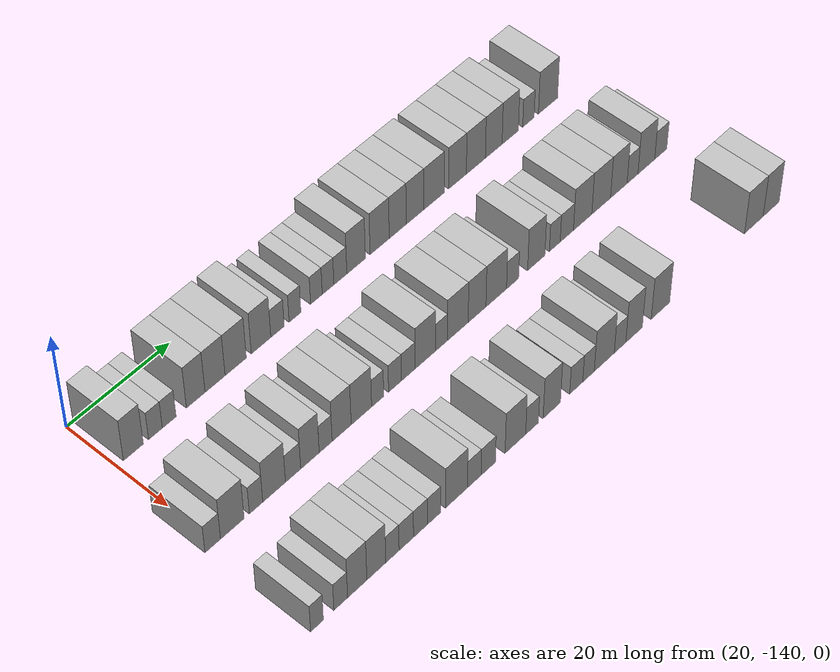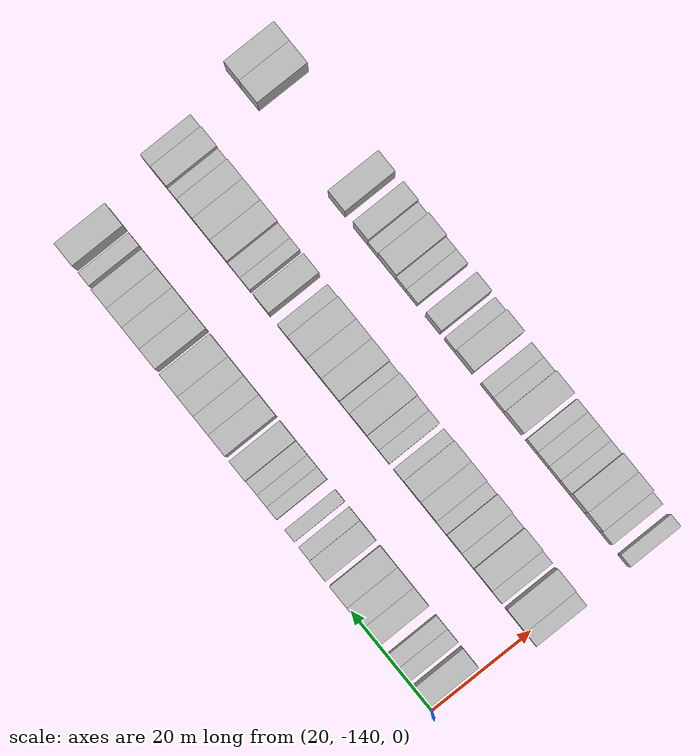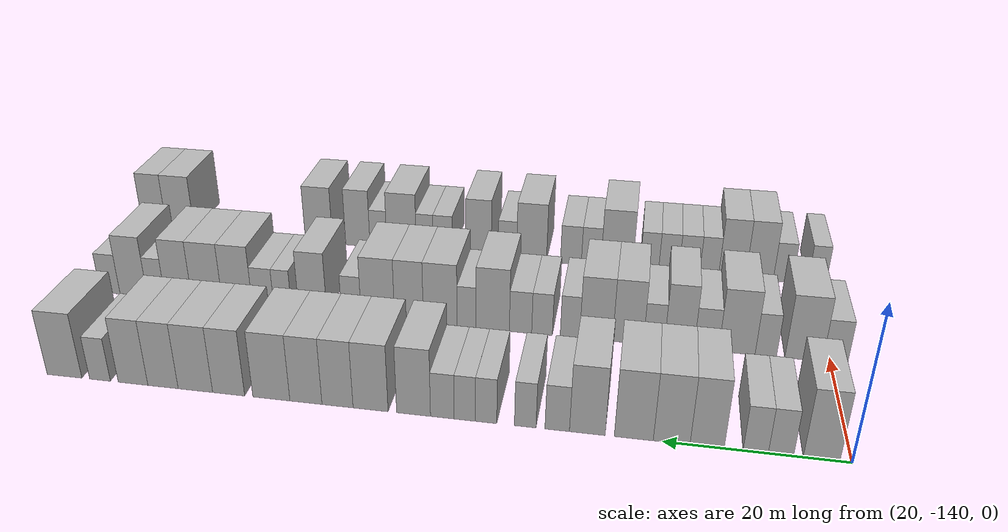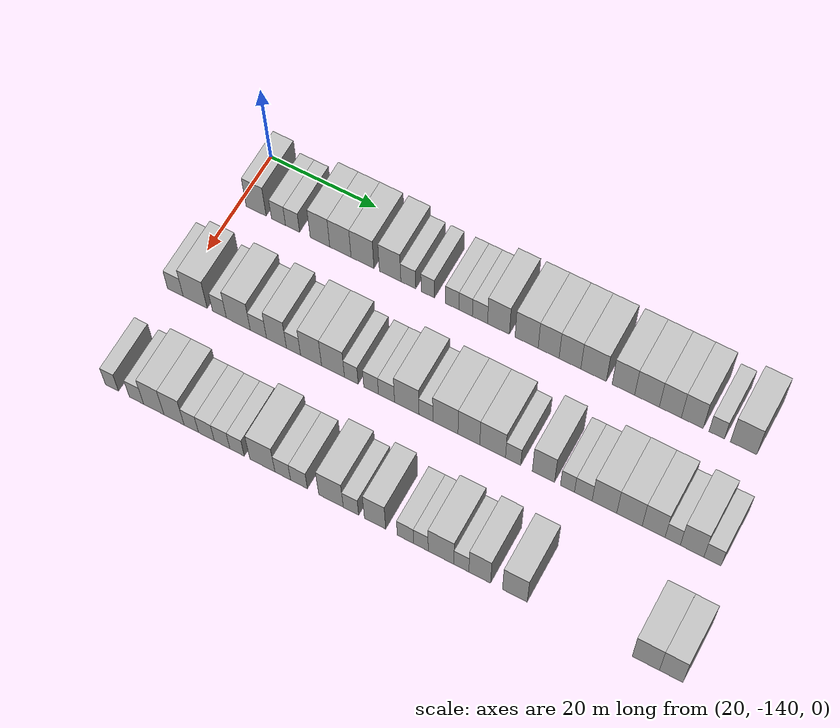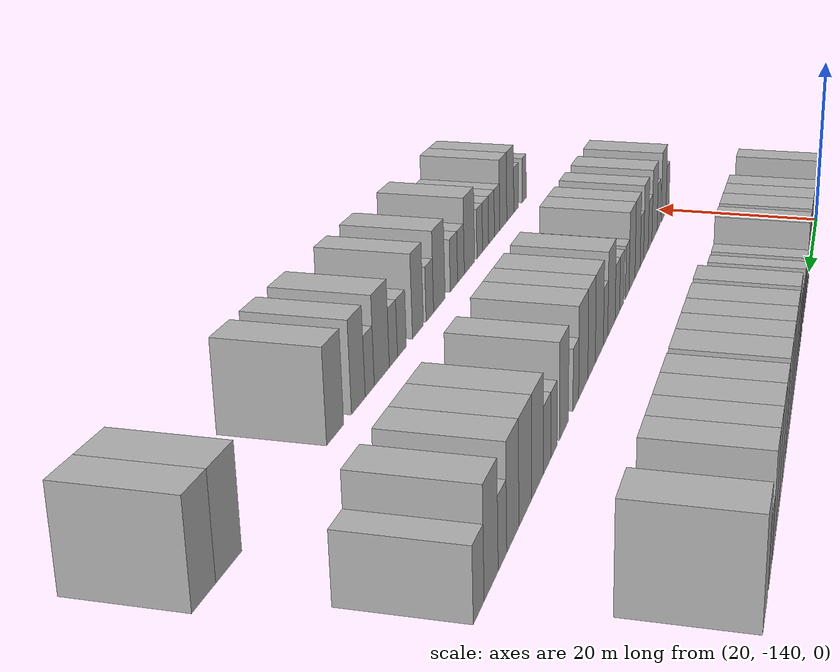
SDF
<sdf version="1.6">
 <world name="default">
  <model name="building_25">
   <static>1</static>
   <pose>25.0000 -136.8205 0 0.000000 0.000000 0.000000</pose>
   <link name="link">
    <pose>0 0 4.50 0 0 0</pose>
    <collision name="collision"><geometry><box><size>10.0000 3.8022 9.0000</size></box></geometry></collision>
    <visual name="visual">
     <cast_shadows>0</cast_shadows>
     <geometry><box><size>10.0000 3.8022 9.0000</size></box></geometry>
     <material>
      <script>
       <uri>model://HANNAS_wall/materials/scripts</uri>
       <uri>model://HANNAS_wall/materials/textures</uri>
       <name>vrc/HANNAS_wall</name>
      </script>
     </material>
    </visual>
   </link>
  </model>
  <model name="building_26">
   <static>1</static>
   <pose>25.0000 -132.5947 0 0.000000 0.000000 0.000000</pose>
   <link name="link">
    <pose>0 0 3.00 0 0 0</pose>
    <collision name="collision"><geometry><box><size>10.0000 2.6496 6.0000</size></box></geometry></collision>
    <visual name="visual">
     <cast_shadows>0</cast_shadows>
     <geometry><box><size>10.0000 2.6496 6.0000</size></box></geometry>
     <material>
      <script>
       <uri>model://HANNAS_wall/materials/scripts</uri>
       <uri>model://HANNAS_wall/materials/textures</uri>
       <name>vrc/HANNAS_wall</name>
      </script>
     </material>
    </visual>
   </link>
  </model>
  <model name="building_27">
   <static>1</static>
   <pose>25.0000 -129.9391 0 0.000000 0.000000 0.000000</pose>
   <link name="link">
    <pose>0 0 3.00 0 0 0</pose>
    <collision name="collision"><geometry><box><size>10.0000 2.6615 6.0000</size></box></geometry></collision>
    <visual name="visual">
     <cast_shadows>0</cast_shadows>
     <geometry><box><size>10.0000 2.6615 6.0000</size></box></geometry>
     <material>
      <script>
       <uri>model://HANNAS_wall/materials/scripts</uri>
       <uri>model://HANNAS_wall/materials/textures</uri>
       <name>vrc/HANNAS_wall</name>
      </script>
     </material>
    </visual>
   </link>
  </model>
  <model name="building_28">
   <static>1</static>
   <pose>25.0000 -124.7796 0 0.000000 0.000000 0.000000</pose>
   <link name="link">
    <pose>0 0 4.50 0 0 0</pose>
    <collision name="collision"><geometry><box><size>10.0000 3.6576 9.0000</size></box></geometry></collision>
    <visual name="visual">
     <cast_shadows>0</cast_shadows>
     <geometry><box><size>10.0000 3.6576 9.0000</size></box></geometry>
     <material>
      <script>
       <uri>model://HANNAS_wall/materials/scripts</uri>
       <uri>model://HANNAS_wall/materials/textures</uri>
       <name>vrc/HANNAS_wall</name>
      </script>
     </material>
    </visual>
   </link>
  </model>
  <model name="building_29">
   <static>1</static>
   <pose>25.0000 -120.9678 0 0.000000 0.000000 0.000000</pose>
   <link name="link">
    <pose>0 0 4.50 0 0 0</pose>
    <collision name="collision"><geometry><box><size>10.0000 3.9659 9.0000</size></box></geometry></collision>
    <visual name="visual">
     <cast_shadows>0</cast_shadows>
     <geometry><box><size>10.0000 3.9659 9.0000</size></box></geometry>
     <material>
      <script>
       <uri>model://HANNAS_wall/materials/scripts</uri>
       <uri>model://HANNAS_wall/materials/textures</uri>
       <name>vrc/HANNAS_wall</name>
      </script>
     </material>
    </visual>
   </link>
  </model>
  <model name="building_30">
   <static>1</static>
   <pose>25.0000 -116.8601 0 0.000000 0.000000 0.000000</pose>
   <link name="link">
    <pose>0 0 4.50 0 0 0</pose>
    <collision name="collision"><geometry><box><size>10.0000 4.2496 9.0000</size></box></geometry></collision>
    <visual name="visual">
     <cast_shadows>0</cast_shadows>
     <geometry><box><size>10.0000 4.2496 9.0000</size></box></geometry>
     <material>
      <script>
       <uri>model://HANNAS_wall/materials/scripts</uri>
       <uri>model://HANNAS_wall/materials/textures</uri>
       <name>vrc/HANNAS_wall</name>
      </script>
     </material>
    </visual>
   </link>
  </model>
  <model name="building_31">
   <static>1</static>
   <pose>25.0000 -111.7595 0 0.000000 0.000000 0.000000</pose>
   <link name="link">
    <pose>0 0 4.50 0 0 0</pose>
    <collision name="collision"><geometry><box><size>10.0000 3.9515 9.0000</size></box></geometry></collision>
    <visual name="visual">
     <cast_shadows>0</cast_shadows>
     <geometry><box><size>10.0000 3.9515 9.0000</size></box></geometry>
     <material>
      <script>
       <uri>model://HANNAS_wall/materials/scripts</uri>
       <uri>model://HANNAS_wall/materials/textures</uri>
       <name>vrc/HANNAS_wall</name>
      </script>
     </material>
    </visual>
   </link>
  </model>
  <model name="building_32">
   <static>1</static>
   <pose>25.0000 -108.4175 0 0.000000 0.000000 0.000000</pose>
   <link name="link">
    <pose>0 0 3.00 0 0 0</pose>
    <collision name="collision"><geometry><box><size>10.0000 2.7323 6.0000</size></box></geometry></collision>
    <visual name="visual">
     <cast_shadows>0</cast_shadows>
     <geometry><box><size>10.0000 2.7323 6.0000</size></box></geometry>
     <material>
      <script>
       <uri>model://HANNAS_wall/materials/scripts</uri>
       <uri>model://HANNAS_wall/materials/textures</uri>
       <name>vrc/HANNAS_wall</name>
      </script>
     </material>
    </visual>
   </link>
  </model>
  <model name="building_33">
   <static>1</static>
   <pose>25.0000 -104.8360 0 0.000000 0.000000 0.000000</pose>
   <link name="link">
    <pose>0 0 3.00 0 0 0</pose>
    <collision name="collision"><geometry><box><size>10.0000 2.4307 6.0000</size></box></geometry></collision>
    <visual name="visual">
     <cast_shadows>0</cast_shadows>
     <geometry><box><size>10.0000 2.4307 6.0000</size></box></geometry>
     <material>
      <script>
       <uri>model://HANNAS_wall/materials/scripts</uri>
       <uri>model://HANNAS_wall/materials/textures</uri>
       <name>vrc/HANNAS_wall</name>
      </script>
     </material>
    </visual>
   </link>
  </model>
  <model name="building_34">
   <static>1</static>
   <pose>25.0000 -100.4031 0 0.000000 0.000000 0.000000</pose>
   <link name="link">
    <pose>0 0 3.00 0 0 0</pose>
    <collision name="collision"><geometry><box><size>10.0000 2.4352 6.0000</size></box></geometry></collision>
    <visual name="visual">
     <cast_shadows>0</cast_shadows>
     <geometry><box><size>10.0000 2.4352 6.0000</size></box></geometry>
     <material>
      <script>
       <uri>model://HANNAS_wall/materials/scripts</uri>
       <uri>model://HANNAS_wall/materials/textures</uri>
       <name>vrc/HANNAS_wall</name>
      </script>
     </material>
    </visual>
   </link>
  </model>
  <model name="building_35">
   <static>1</static>
   <pose>25.0000 -97.9705 0 0.000000 0.000000 0.000000</pose>
   <link name="link">
    <pose>0 0 3.00 0 0 0</pose>
    <collision name="collision"><geometry><box><size>10.0000 2.4299 6.0000</size></box></geometry></collision>
    <visual name="visual">
     <cast_shadows>0</cast_shadows>
     <geometry><box><size>10.0000 2.4299 6.0000</size></box></geometry>
     <material>
      <script>
       <uri>model://HANNAS_wall/materials/scripts</uri>
       <uri>model://HANNAS_wall/materials/textures</uri>
       <name>vrc/HANNAS_wall</name>
      </script>
     </material>
    </visual>
   </link>
  </model>
  <model name="building_36">
   <static>1</static>
   <pose>25.0000 -95.3908 0 0.000000 0.000000 0.000000</pose>
   <link name="link">
    <pose>0 0 3.00 0 0 0</pose>
    <collision name="collision"><geometry><box><size>10.0000 2.7296 6.0000</size></box></geometry></collision>
    <visual name="visual">
     <cast_shadows>0</cast_shadows>
     <geometry><box><size>10.0000 2.7296 6.0000</size></box></geometry>
     <material>
      <script>
       <uri>model://HANNAS_wall/materials/scripts</uri>
       <uri>model://HANNAS_wall/materials/textures</uri>
       <name>vrc/HANNAS_wall</name>
      </script>
     </material>
    </visual>
   </link>
  </model>
  <model name="building_37">
   <static>1</static>
   <pose>25.0000 -92.0569 0 0.000000 0.000000 0.000000</pose>
   <link name="link">
    <pose>0 0 4.50 0 0 0</pose>
    <collision name="collision"><geometry><box><size>10.0000 3.9380 9.0000</size></box></geometry></collision>
    <visual name="visual">
     <cast_shadows>0</cast_shadows>
     <geometry><box><size>10.0000 3.9380 9.0000</size></box></geometry>
     <material>
      <script>
       <uri>model://HANNAS_wall/materials/scripts</uri>
       <uri>model://HANNAS_wall/materials/textures</uri>
       <name>vrc/HANNAS_wall</name>
      </script>
     </material>
    </visual>
   </link>
  </model>
  <model name="building_38">
   <static>1</static>
   <pose>25.0000 -87.0255 0 0.000000 0.000000 0.000000</pose>
   <link name="link">
    <pose>0 0 4.50 0 0 0</pose>
    <collision name="collision"><geometry><box><size>10.0000 4.1249 9.0000</size></box></geometry></collision>
    <visual name="visual">
     <cast_shadows>0</cast_shadows>
     <geometry><box><size>10.0000 4.1249 9.0000</size></box></geometry>
     <material>
      <script>
       <uri>model://HANNAS_wall/materials/scripts</uri>
       <uri>model://HANNAS_wall/materials/textures</uri>
       <name>vrc/HANNAS_wall</name>
      </script>
     </material>
    </visual>
   </link>
  </model>
  <model name="building_39">
   <static>1</static>
   <pose>25.0000 -83.1135 0 0.000000 0.000000 0.000000</pose>
   <link name="link">
    <pose>0 0 4.50 0 0 0</pose>
    <collision name="collision"><geometry><box><size>10.0000 3.6992 9.0000</size></box></geometry></collision>
    <visual name="visual">
     <cast_shadows>0</cast_shadows>
     <geometry><box><size>10.0000 3.6992 9.0000</size></box></geometry>
     <material>
      <script>
       <uri>model://HANNAS_wall/materials/scripts</uri>
       <uri>model://HANNAS_wall/materials/textures</uri>
       <name>vrc/HANNAS_wall</name>
      </script>
     </material>
    </visual>
   </link>
  </model>
  <model name="building_40">
   <static>1</static>
   <pose>25.0000 -79.3368 0 0.000000 0.000000 0.000000</pose>
   <link name="link">
    <pose>0 0 4.50 0 0 0</pose>
    <collision name="collision"><geometry><box><size>10.0000 3.8541 9.0000</size></box></geometry></collision>
    <visual name="visual">
     <cast_shadows>0</cast_shadows>
     <geometry><box><size>10.0000 3.8541 9.0000</size></box></geometry>
     <material>
      <script>
       <uri>model://HANNAS_wall/materials/scripts</uri>
       <uri>model://HANNAS_wall/materials/textures</uri>
       <name>vrc/HANNAS_wall</name>
      </script>
     </material>
    </visual>
   </link>
  </model>
  <model name="building_41">
   <static>1</static>
   <pose>25.0000 -75.1623 0 0.000000 0.000000 0.000000</pose>
   <link name="link">
    <pose>0 0 4.50 0 0 0</pose>
    <collision name="collision"><geometry><box><size>10.0000 4.4949 9.0000</size></box></geometry></collision>
    <visual name="visual">
     <cast_shadows>0</cast_shadows>
     <geometry><box><size>10.0000 4.4949 9.0000</size></box></geometry>
     <material>
      <script>
       <uri>model://HANNAS_wall/materials/scripts</uri>
       <uri>model://HANNAS_wall/materials/textures</uri>
       <name>vrc/HANNAS_wall</name>
      </script>
     </material>
    </visual>
   </link>
  </model>
  <model name="building_42">
   <static>1</static>
   <pose>25.0000 -69.9440 0 0.000000 0.000000 0.000000</pose>
   <link name="link">
    <pose>0 0 4.50 0 0 0</pose>
    <collision name="collision"><geometry><box><size>10.0000 3.9416 9.0000</size></box></geometry></collision>
    <visual name="visual">
     <cast_shadows>0</cast_shadows>
     <geometry><box><size>10.0000 3.9416 9.0000</size></box></geometry>
     <material>
      <script>
       <uri>model://HANNAS_wall/materials/scripts</uri>
       <uri>model://HANNAS_wall/materials/textures</uri>
       <name>vrc/HANNAS_wall</name>
      </script>
     </material>
    </visual>
   </link>
  </model>
  <model name="building_43">
   <static>1</static>
   <pose>25.0000 -65.8297 0 0.000000 0.000000 0.000000</pose>
   <link name="link">
    <pose>0 0 4.50 0 0 0</pose>
    <collision name="collision"><geometry><box><size>10.0000 4.2870 9.0000</size></box></geometry></collision>
    <visual name="visual">
     <cast_shadows>0</cast_shadows>
     <geometry><box><size>10.0000 4.2870 9.0000</size></box></geometry>
     <material>
      <script>
       <uri>model://HANNAS_wall/materials/scripts</uri>
       <uri>model://HANNAS_wall/materials/textures</uri>
       <name>vrc/HANNAS_wall</name>
      </script>
     </material>
    </visual>
   </link>
  </model>
  <model name="building_44">
   <static>1</static>
   <pose>25.0000 -61.7863 0 0.000000 0.000000 0.000000</pose>
   <link name="link">
    <pose>0 0 4.50 0 0 0</pose>
    <collision name="collision"><geometry><box><size>10.0000 3.7997 9.0000</size></box></geometry></collision>
    <visual name="visual">
     <cast_shadows>0</cast_shadows>
     <geometry><box><size>10.0000 3.7997 9.0000</size></box></geometry>
     <material>
      <script>
       <uri>model://HANNAS_wall/materials/scripts</uri>
       <uri>model://HANNAS_wall/materials/textures</uri>
       <name>vrc/HANNAS_wall</name>
      </script>
     </material>
    </visual>
   </link>
  </model>
  <model name="building_45">
   <static>1</static>
   <pose>25.0000 -58.0073 0 0.000000 0.000000 0.000000</pose>
   <link name="link">
    <pose>0 0 4.50 0 0 0</pose>
    <collision name="collision"><geometry><box><size>10.0000 3.7584 9.0000</size></box></geometry></collision>
    <visual name="visual">
     <cast_shadows>0</cast_shadows>
     <geometry><box><size>10.0000 3.7584 9.0000</size></box></geometry>
     <material>
      <script>
       <uri>model://HANNAS_wall/materials/scripts</uri>
       <uri>model://HANNAS_wall/materials/textures</uri>
       <name>vrc/HANNAS_wall</name>
      </script>
     </material>
    </visual>
   </link>
  </model>
  <model name="building_46">
   <static>1</static>
   <pose>25.0000 -53.8024 0 0.000000 0.000000 0.000000</pose>
   <link name="link">
    <pose>0 0 3.00 0 0 0</pose>
    <collision name="collision"><geometry><box><size>10.0000 2.6514 6.0000</size></box></geometry></collision>
    <visual name="visual">
     <cast_shadows>0</cast_shadows>
     <geometry><box><size>10.0000 2.6514 6.0000</size></box></geometry>
     <material>
      <script>
       <uri>model://HANNAS_wall/materials/scripts</uri>
       <uri>model://HANNAS_wall/materials/textures</uri>
       <name>vrc/HANNAS_wall</name>
      </script>
     </material>
    </visual>
   </link>
  </model>
  <model name="building_47">
   <static>1</static>
   <pose>25.0000 -49.2343 0 0.000000 0.000000 0.000000</pose>
   <link name="link">
    <pose>0 0 4.50 0 0 0</pose>
    <collision name="collision"><geometry><box><size>10.0000 4.4848 9.0000</size></box></geometry></collision>
    <visual name="visual">
     <cast_shadows>0</cast_shadows>
     <geometry><box><size>10.0000 4.4848 9.0000</size></box></geometry>
     <material>
      <script>
       <uri>model://HANNAS_wall/materials/scripts</uri>
       <uri>model://HANNAS_wall/materials/textures</uri>
       <name>vrc/HANNAS_wall</name>
      </script>
     </material>
    </visual>
   </link>
  </model>
  <model name="building_143">
   <static>1</static>
   <pose>44.0000 -140.5336 0 0.000000 0.000000 0.000000</pose>
   <link name="link">
    <pose>0 0 3.00 0 0 0</pose>
    <collision name="collision"><geometry><box><size>10.0000 2.9386 6.0000</size></box></geometry></collision>
    <visual name="visual">
     <cast_shadows>0</cast_shadows>
     <geometry><box><size>10.0000 2.9386 6.0000</size></box></geometry>
     <material>
      <script>
       <uri>model://HANNAS_wall/materials/scripts</uri>
       <uri>model://HANNAS_wall/materials/textures</uri>
       <name>vrc/HANNAS_wall</name>
      </script>
     </material>
    </visual>
   </link>
  </model>
  <model name="building_144">
   <static>1</static>
   <pose>44.0000 -136.8175 0 0.000000 0.000000 0.000000</pose>
   <link name="link">
    <pose>0 0 4.50 0 0 0</pose>
    <collision name="collision"><geometry><box><size>10.0000 4.4934 9.0000</size></box></geometry></collision>
    <visual name="visual">
     <cast_shadows>0</cast_shadows>
     <geometry><box><size>10.0000 4.4934 9.0000</size></box></geometry>
     <material>
      <script>
       <uri>model://HANNAS_wall/materials/scripts</uri>
       <uri>model://HANNAS_wall/materials/textures</uri>
       <name>vrc/HANNAS_wall</name>
      </script>
     </material>
    </visual>
   </link>
  </model>
  <model name="building_145">
   <static>1</static>
   <pose>44.0000 -132.2793 0 0.000000 0.000000 0.000000</pose>
   <link name="link">
    <pose>0 0 3.00 0 0 0</pose>
    <collision name="collision"><geometry><box><size>10.0000 2.5831 6.0000</size></box></geometry></collision>
    <visual name="visual">
     <cast_shadows>0</cast_shadows>
     <geometry><box><size>10.0000 2.5831 6.0000</size></box></geometry>
     <material>
      <script>
       <uri>model://HANNAS_wall/materials/scripts</uri>
       <uri>model://HANNAS_wall/materials/textures</uri>
       <name>vrc/HANNAS_wall</name>
      </script>
     </material>
    </visual>
   </link>
  </model>
  <model name="building_146">
   <static>1</static>
   <pose>44.0000 -128.7735 0 0.000000 0.000000 0.000000</pose>
   <link name="link">
    <pose>0 0 4.50 0 0 0</pose>
    <collision name="collision"><geometry><box><size>10.0000 4.4284 9.0000</size></box></geometry></collision>
    <visual name="visual">
     <cast_shadows>0</cast_shadows>
     <geometry><box><size>10.0000 4.4284 9.0000</size></box></geometry>
     <material>
      <script>
       <uri>model://HANNAS_wall/materials/scripts</uri>
       <uri>model://HANNAS_wall/materials/textures</uri>
       <name>vrc/HANNAS_wall</name>
      </script>
     </material>
    </visual>
   </link>
  </model>
  <model name="building_147">
   <static>1</static>
   <pose>44.0000 -125.0621 0 0.000000 0.000000 0.000000</pose>
   <link name="link">
    <pose>0 0 3.00 0 0 0</pose>
    <collision name="collision"><geometry><box><size>10.0000 2.9943 6.0000</size></box></geometry></collision>
    <visual name="visual">
     <cast_shadows>0</cast_shadows>
     <geometry><box><size>10.0000 2.9943 6.0000</size></box></geometry>
     <material>
      <script>
       <uri>model://HANNAS_wall/materials/scripts</uri>
       <uri>model://HANNAS_wall/materials/textures</uri>
       <name>vrc/HANNAS_wall</name>
      </script>
     </material>
    </visual>
   </link>
  </model>
  <model name="building_148">
   <static>1</static>
   <pose>44.0000 -121.7322 0 0.000000 0.000000 0.000000</pose>
   <link name="link">
    <pose>0 0 4.50 0 0 0</pose>
    <collision name="collision"><geometry><box><size>10.0000 3.6655 9.0000</size></box></geometry></collision>
    <visual name="visual">
     <cast_shadows>0</cast_shadows>
     <geometry><box><size>10.0000 3.6655 9.0000</size></box></geometry>
     <material>
      <script>
       <uri>model://HANNAS_wall/materials/scripts</uri>
       <uri>model://HANNAS_wall/materials/textures</uri>
       <name>vrc/HANNAS_wall</name>
      </script>
     </material>
    </visual>
   </link>
  </model>
  <model name="building_149">
   <static>1</static>
   <pose>44.0000 -118.6100 0 0.000000 0.000000 0.000000</pose>
   <link name="link">
    <pose>0 0 3.00 0 0 0</pose>
    <collision name="collision"><geometry><box><size>10.0000 2.5789 6.0000</size></box></geometry></collision>
    <visual name="visual">
     <cast_shadows>0</cast_shadows>
     <geometry><box><size>10.0000 2.5789 6.0000</size></box></geometry>
     <material>
      <script>
       <uri>model://HANNAS_wall/materials/scripts</uri>
       <uri>model://HANNAS_wall/materials/textures</uri>
       <name>vrc/HANNAS_wall</name>
      </script>
     </material>
    </visual>
   </link>
  </model>
  <model name="building_150">
   <static>1</static>
   <pose>44.0000 -115.4053 0 0.000000 0.000000 0.000000</pose>
   <link name="link">
    <pose>0 0 4.50 0 0 0</pose>
    <collision name="collision"><geometry><box><size>10.0000 3.8304 9.0000</size></box></geometry></collision>
    <visual name="visual">
     <cast_shadows>0</cast_shadows>
     <geometry><box><size>10.0000 3.8304 9.0000</size></box></geometry>
     <material>
      <script>
       <uri>model://HANNAS_wall/materials/scripts</uri>
       <uri>model://HANNAS_wall/materials/textures</uri>
       <name>vrc/HANNAS_wall</name>
      </script>
     </material>
    </visual>
   </link>
  </model>
  <model name="building_151">
   <static>1</static>
   <pose>44.0000 -111.4101 0 0.000000 0.000000 0.000000</pose>
   <link name="link">
    <pose>0 0 4.50 0 0 0</pose>
    <collision name="collision"><geometry><box><size>10.0000 4.1600 9.0000</size></box></geometry></collision>
    <visual name="visual">
     <cast_shadows>0</cast_shadows>
     <geometry><box><size>10.0000 4.1600 9.0000</size></box></geometry>
     <material>
      <script>
       <uri>model://HANNAS_wall/materials/scripts</uri>
       <uri>model://HANNAS_wall/materials/textures</uri>
       <name>vrc/HANNAS_wall</name>
      </script>
     </material>
    </visual>
   </link>
  </model>
  <model name="building_152">
   <static>1</static>
   <pose>44.0000 -108.0941 0 0.000000 0.000000 0.000000</pose>
   <link name="link">
    <pose>0 0 3.00 0 0 0</pose>
    <collision name="collision"><geometry><box><size>10.0000 2.4720 6.0000</size></box></geometry></collision>
    <visual name="visual">
     <cast_shadows>0</cast_shadows>
     <geometry><box><size>10.0000 2.4720 6.0000</size></box></geometry>
     <material>
      <script>
       <uri>model://HANNAS_wall/materials/scripts</uri>
       <uri>model://HANNAS_wall/materials/textures</uri>
       <name>vrc/HANNAS_wall</name>
      </script>
     </material>
    </visual>
   </link>
  </model>
  <model name="building_153">
   <static>1</static>
   <pose>44.0000 -104.5364 0 0.000000 0.000000 0.000000</pose>
   <link name="link">
    <pose>0 0 3.00 0 0 0</pose>
    <collision name="collision"><geometry><box><size>10.0000 2.6435 6.0000</size></box></geometry></collision>
    <visual name="visual">
     <cast_shadows>0</cast_shadows>
     <geometry><box><size>10.0000 2.6435 6.0000</size></box></geometry>
     <material>
      <script>
       <uri>model://HANNAS_wall/materials/scripts</uri>
       <uri>model://HANNAS_wall/materials/textures</uri>
       <name>vrc/HANNAS_wall</name>
      </script>
     </material>
    </visual>
   </link>
  </model>
  <model name="building_154">
   <static>1</static>
   <pose>44.0000 -101.7747 0 0.000000 0.000000 0.000000</pose>
   <link name="link">
    <pose>0 0 3.00 0 0 0</pose>
    <collision name="collision"><geometry><box><size>10.0000 2.8798 6.0000</size></box></geometry></collision>
    <visual name="visual">
     <cast_shadows>0</cast_shadows>
     <geometry><box><size>10.0000 2.8798 6.0000</size></box></geometry>
     <material>
      <script>
       <uri>model://HANNAS_wall/materials/scripts</uri>
       <uri>model://HANNAS_wall/materials/textures</uri>
       <name>vrc/HANNAS_wall</name>
      </script>
     </material>
    </visual>
   </link>
  </model>
  <model name="building_155">
   <static>1</static>
   <pose>44.0000 -98.1616 0 0.000000 0.000000 0.000000</pose>
   <link name="link">
    <pose>0 0 4.50 0 0 0</pose>
    <collision name="collision"><geometry><box><size>10.0000 4.3463 9.0000</size></box></geometry></collision>
    <visual name="visual">
     <cast_shadows>0</cast_shadows>
     <geometry><box><size>10.0000 4.3463 9.0000</size></box></geometry>
     <material>
      <script>
       <uri>model://HANNAS_wall/materials/scripts</uri>
       <uri>model://HANNAS_wall/materials/textures</uri>
       <name>vrc/HANNAS_wall</name>
      </script>
     </material>
    </visual>
   </link>
  </model>
  <model name="building_156">
   <static>1</static>
   <pose>44.0000 -94.7564 0 0.000000 0.000000 0.000000</pose>
   <link name="link">
    <pose>0 0 3.00 0 0 0</pose>
    <collision name="collision"><geometry><box><size>10.0000 2.4642 6.0000</size></box></geometry></collision>
    <visual name="visual">
     <cast_shadows>0</cast_shadows>
     <geometry><box><size>10.0000 2.4642 6.0000</size></box></geometry>
     <material>
      <script>
       <uri>model://HANNAS_wall/materials/scripts</uri>
       <uri>model://HANNAS_wall/materials/textures</uri>
       <name>vrc/HANNAS_wall</name>
      </script>
     </material>
    </visual>
   </link>
  </model>
  <model name="building_157">
   <static>1</static>
   <pose>44.0000 -91.3066 0 0.000000 0.000000 0.000000</pose>
   <link name="link">
    <pose>0 0 4.50 0 0 0</pose>
    <collision name="collision"><geometry><box><size>10.0000 4.4353 9.0000</size></box></geometry></collision>
    <visual name="visual">
     <cast_shadows>0</cast_shadows>
     <geometry><box><size>10.0000 4.4353 9.0000</size></box></geometry>
     <material>
      <script>
       <uri>model://HANNAS_wall/materials/scripts</uri>
       <uri>model://HANNAS_wall/materials/textures</uri>
       <name>vrc/HANNAS_wall</name>
      </script>
     </material>
    </visual>
   </link>
  </model>
  <model name="building_158">
   <static>1</static>
   <pose>44.0000 -87.1764 0 0.000000 0.000000 0.000000</pose>
   <link name="link">
    <pose>0 0 4.50 0 0 0</pose>
    <collision name="collision"><geometry><box><size>10.0000 3.8252 9.0000</size></box></geometry></collision>
    <visual name="visual">
     <cast_shadows>0</cast_shadows>
     <geometry><box><size>10.0000 3.8252 9.0000</size></box></geometry>
     <material>
      <script>
       <uri>model://HANNAS_wall/materials/scripts</uri>
       <uri>model://HANNAS_wall/materials/textures</uri>
       <name>vrc/HANNAS_wall</name>
      </script>
     </material>
    </visual>
   </link>
  </model>
  <model name="building_159">
   <static>1</static>
   <pose>44.0000 -83.0212 0 0.000000 0.000000 0.000000</pose>
   <link name="link">
    <pose>0 0 4.50 0 0 0</pose>
    <collision name="collision"><geometry><box><size>10.0000 4.4852 9.0000</size></box></geometry></collision>
    <visual name="visual">
     <cast_shadows>0</cast_shadows>
     <geometry><box><size>10.0000 4.4852 9.0000</size></box></geometry>
     <material>
      <script>
       <uri>model://HANNAS_wall/materials/scripts</uri>
       <uri>model://HANNAS_wall/materials/textures</uri>
       <name>vrc/HANNAS_wall</name>
      </script>
     </material>
    </visual>
   </link>
  </model>
  <model name="building_160">
   <static>1</static>
   <pose>44.0000 -79.4517 0 0.000000 0.000000 0.000000</pose>
   <link name="link">
    <pose>0 0 3.00 0 0 0</pose>
    <collision name="collision"><geometry><box><size>10.0000 2.6538 6.0000</size></box></geometry></collision>
    <visual name="visual">
     <cast_shadows>0</cast_shadows>
     <geometry><box><size>10.0000 2.6538 6.0000</size></box></geometry>
     <material>
      <script>
       <uri>model://HANNAS_wall/materials/scripts</uri>
       <uri>model://HANNAS_wall/materials/textures</uri>
       <name>vrc/HANNAS_wall</name>
      </script>
     </material>
    </visual>
   </link>
  </model>
  <model name="building_161">
   <static>1</static>
   <pose>44.0000 -74.2006 0 0.000000 0.000000 0.000000</pose>
   <link name="link">
    <pose>0 0 4.50 0 0 0</pose>
    <collision name="collision"><geometry><box><size>10.0000 3.8483 9.0000</size></box></geometry></collision>
    <visual name="visual">
     <cast_shadows>0</cast_shadows>
     <geometry><box><size>10.0000 3.8483 9.0000</size></box></geometry>
     <material>
      <script>
       <uri>model://HANNAS_wall/materials/scripts</uri>
       <uri>model://HANNAS_wall/materials/textures</uri>
       <name>vrc/HANNAS_wall</name>
      </script>
     </material>
    </visual>
   </link>
  </model>
  <model name="building_162">
   <static>1</static>
   <pose>44.0000 -70.0641 0 0.000000 0.000000 0.000000</pose>
   <link name="link">
    <pose>0 0 3.00 0 0 0</pose>
    <collision name="collision"><geometry><box><size>10.0000 2.4248 6.0000</size></box></geometry></collision>
    <visual name="visual">
     <cast_shadows>0</cast_shadows>
     <geometry><box><size>10.0000 2.4248 6.0000</size></box></geometry>
     <material>
      <script>
       <uri>model://HANNAS_wall/materials/scripts</uri>
       <uri>model://HANNAS_wall/materials/textures</uri>
       <name>vrc/HANNAS_wall</name>
      </script>
     </material>
    </visual>
   </link>
  </model>
  <model name="building_163">
   <static>1</static>
   <pose>44.0000 -67.3517 0 0.000000 0.000000 0.000000</pose>
   <link name="link">
    <pose>0 0 3.00 0 0 0</pose>
    <collision name="collision"><geometry><box><size>10.0000 3.0000 6.0000</size></box></geometry></collision>
    <visual name="visual">
     <cast_shadows>0</cast_shadows>
     <geometry><box><size>10.0000 3.0000 6.0000</size></box></geometry>
     <material>
      <script>
       <uri>model://HANNAS_wall/materials/scripts</uri>
       <uri>model://HANNAS_wall/materials/textures</uri>
       <name>vrc/HANNAS_wall</name>
      </script>
     </material>
    </visual>
   </link>
  </model>
  <model name="building_164">
   <static>1</static>
   <pose>44.0000 -63.7517 0 0.000000 0.000000 0.000000</pose>
   <link name="link">
    <pose>0 0 4.50 0 0 0</pose>
    <collision name="collision"><geometry><box><size>10.0000 4.2001 9.0000</size></box></geometry></collision>
    <visual name="visual">
     <cast_shadows>0</cast_shadows>
     <geometry><box><size>10.0000 4.2001 9.0000</size></box></geometry>
     <material>
      <script>
       <uri>model://HANNAS_wall/materials/scripts</uri>
       <uri>model://HANNAS_wall/materials/textures</uri>
       <name>vrc/HANNAS_wall</name>
      </script>
     </material>
    </visual>
   </link>
  </model>
  <model name="building_165">
   <static>1</static>
   <pose>44.0000 -59.4950 0 0.000000 0.000000 0.000000</pose>
   <link name="link">
    <pose>0 0 4.50 0 0 0</pose>
    <collision name="collision"><geometry><box><size>10.0000 4.3133 9.0000</size></box></geometry></collision>
    <visual name="visual">
     <cast_shadows>0</cast_shadows>
     <geometry><box><size>10.0000 4.3133 9.0000</size></box></geometry>
     <material>
      <script>
       <uri>model://HANNAS_wall/materials/scripts</uri>
       <uri>model://HANNAS_wall/materials/textures</uri>
       <name>vrc/HANNAS_wall</name>
      </script>
     </material>
    </visual>
   </link>
  </model>
  <model name="building_166">
   <static>1</static>
   <pose>44.0000 -55.4160 0 0.000000 0.000000 0.000000</pose>
   <link name="link">
    <pose>0 0 4.50 0 0 0</pose>
    <collision name="collision"><geometry><box><size>10.0000 3.8447 9.0000</size></box></geometry></collision>
    <visual name="visual">
     <cast_shadows>0</cast_shadows>
     <geometry><box><size>10.0000 3.8447 9.0000</size></box></geometry>
     <material>
      <script>
       <uri>model://HANNAS_wall/materials/scripts</uri>
       <uri>model://HANNAS_wall/materials/textures</uri>
       <name>vrc/HANNAS_wall</name>
      </script>
     </material>
    </visual>
   </link>
  </model>
  <model name="building_167">
   <static>1</static>
   <pose>44.0000 -52.2136 0 0.000000 0.000000 0.000000</pose>
   <link name="link">
    <pose>0 0 3.00 0 0 0</pose>
    <collision name="collision"><geometry><box><size>10.0000 2.5601 6.0000</size></box></geometry></collision>
    <visual name="visual">
     <cast_shadows>0</cast_shadows>
     <geometry><box><size>10.0000 2.5601 6.0000</size></box></geometry>
     <material>
      <script>
       <uri>model://HANNAS_wall/materials/scripts</uri>
       <uri>model://HANNAS_wall/materials/textures</uri>
       <name>vrc/HANNAS_wall</name>
      </script>
     </material>
    </visual>
   </link>
  </model>
  <model name="building_168">
   <static>1</static>
   <pose>44.0000 -48.9586 0 0.000000 0.000000 0.000000</pose>
   <link name="link">
    <pose>0 0 4.50 0 0 0</pose>
    <collision name="collision"><geometry><box><size>10.0000 3.9499 9.0000</size></box></geometry></collision>
    <visual name="visual">
     <cast_shadows>0</cast_shadows>
     <geometry><box><size>10.0000 3.9499 9.0000</size></box></geometry>
     <material>
      <script>
       <uri>model://HANNAS_wall/materials/scripts</uri>
       <uri>model://HANNAS_wall/materials/textures</uri>
       <name>vrc/HANNAS_wall</name>
      </script>
     </material>
    </visual>
   </link>
  </model>
  <model name="building_169">
   <static>1</static>
   <pose>44.0000 -45.5479 0 0.000000 0.000000 0.000000</pose>
   <link name="link">
    <pose>0 0 3.00 0 0 0</pose>
    <collision name="collision"><geometry><box><size>10.0000 2.8716 6.0000</size></box></geometry></collision>
    <visual name="visual">
     <cast_shadows>0</cast_shadows>
     <geometry><box><size>10.0000 2.8716 6.0000</size></box></geometry>
     <material>
      <script>
       <uri>model://HANNAS_wall/materials/scripts</uri>
       <uri>model://HANNAS_wall/materials/textures</uri>
       <name>vrc/HANNAS_wall</name>
      </script>
     </material>
    </visual>
   </link>
  </model>
  <model name="building_264">
   <static>1</static>
   <pose>63.0000 -140.3973 0 0.000000 0.000000 0.000000</pose>
   <link name="link">
    <pose>0 0 3.00 0 0 0</pose>
    <collision name="collision"><geometry><box><size>10.0000 2.4275 6.0000</size></box></geometry></collision>
    <visual name="visual">
     <cast_shadows>0</cast_shadows>
     <geometry><box><size>10.0000 2.4275 6.0000</size></box></geometry>
     <material>
      <script>
       <uri>model://HANNAS_wall/materials/scripts</uri>
       <uri>model://HANNAS_wall/materials/textures</uri>
       <name>vrc/HANNAS_wall</name>
      </script>
     </material>
    </visual>
   </link>
  </model>
  <model name="building_265">
   <static>1</static>
   <pose>63.0000 -135.8685 0 0.000000 0.000000 0.000000</pose>
   <link name="link">
    <pose>0 0 3.00 0 0 0</pose>
    <collision name="collision"><geometry><box><size>10.0000 2.6301 6.0000</size></box></geometry></collision>
    <visual name="visual">
     <cast_shadows>0</cast_shadows>
     <geometry><box><size>10.0000 2.6301 6.0000</size></box></geometry>
     <material>
      <script>
       <uri>model://HANNAS_wall/materials/scripts</uri>
       <uri>model://HANNAS_wall/materials/textures</uri>
       <name>vrc/HANNAS_wall</name>
      </script>
     </material>
    </visual>
   </link>
  </model>
  <model name="building_266">
   <static>1</static>
   <pose>63.0000 -132.6913 0 0.000000 0.000000 0.000000</pose>
   <link name="link">
    <pose>0 0 4.50 0 0 0</pose>
    <collision name="collision"><geometry><box><size>10.0000 3.7242 9.0000</size></box></geometry></collision>
    <visual name="visual">
     <cast_shadows>0</cast_shadows>
     <geometry><box><size>10.0000 3.7242 9.0000</size></box></geometry>
     <material>
      <script>
       <uri>model://HANNAS_wall/materials/scripts</uri>
       <uri>model://HANNAS_wall/materials/textures</uri>
       <name>vrc/HANNAS_wall</name>
      </script>
     </material>
    </visual>
   </link>
  </model>
  <model name="building_267">
   <static>1</static>
   <pose>63.0000 -128.9838 0 0.000000 0.000000 0.000000</pose>
   <link name="link">
    <pose>0 0 4.50 0 0 0</pose>
    <collision name="collision"><geometry><box><size>10.0000 3.6910 9.0000</size></box></geometry></collision>
    <visual name="visual">
     <cast_shadows>0</cast_shadows>
     <geometry><box><size>10.0000 3.6910 9.0000</size></box></geometry>
     <material>
      <script>
       <uri>model://HANNAS_wall/materials/scripts</uri>
       <uri>model://HANNAS_wall/materials/textures</uri>
       <name>vrc/HANNAS_wall</name>
      </script>
     </material>
    </visual>
   </link>
  </model>
  <model name="building_268">
   <static>1</static>
   <pose>63.0000 -125.8316 0 0.000000 0.000000 0.000000</pose>
   <link name="link">
    <pose>0 0 3.00 0 0 0</pose>
    <collision name="collision"><geometry><box><size>10.0000 2.6133 6.0000</size></box></geometry></collision>
    <visual name="visual">
     <cast_shadows>0</cast_shadows>
     <geometry><box><size>10.0000 2.6133 6.0000</size></box></geometry>
     <material>
      <script>
       <uri>model://HANNAS_wall/materials/scripts</uri>
       <uri>model://HANNAS_wall/materials/textures</uri>
       <name>vrc/HANNAS_wall</name>
      </script>
     </material>
    </visual>
   </link>
  </model>
  <model name="building_269">
   <static>1</static>
   <pose>63.0000 -123.0924 0 0.000000 0.000000 0.000000</pose>
   <link name="link">
    <pose>0 0 3.00 0 0 0</pose>
    <collision name="collision"><geometry><box><size>10.0000 2.8652 6.0000</size></box></geometry></collision>
    <visual name="visual">
     <cast_shadows>0</cast_shadows>
     <geometry><box><size>10.0000 2.8652 6.0000</size></box></geometry>
     <material>
      <script>
       <uri>model://HANNAS_wall/materials/scripts</uri>
       <uri>model://HANNAS_wall/materials/textures</uri>
       <name>vrc/HANNAS_wall</name>
      </script>
     </material>
    </visual>
   </link>
  </model>
  <model name="building_270">
   <static>1</static>
   <pose>63.0000 -120.2550 0 0.000000 0.000000 0.000000</pose>
   <link name="link">
    <pose>0 0 3.00 0 0 0</pose>
    <collision name="collision"><geometry><box><size>10.0000 2.8096 6.0000</size></box></geometry></collision>
    <visual name="visual">
     <cast_shadows>0</cast_shadows>
     <geometry><box><size>10.0000 2.8096 6.0000</size></box></geometry>
     <material>
      <script>
       <uri>model://HANNAS_wall/materials/scripts</uri>
       <uri>model://HANNAS_wall/materials/textures</uri>
       <name>vrc/HANNAS_wall</name>
      </script>
     </material>
    </visual>
   </link>
  </model>
  <model name="building_271">
   <static>1</static>
   <pose>63.0000 -117.5481 0 0.000000 0.000000 0.000000</pose>
   <link name="link">
    <pose>0 0 3.00 0 0 0</pose>
    <collision name="collision"><geometry><box><size>10.0000 2.6042 6.0000</size></box></geometry></collision>
    <visual name="visual">
     <cast_shadows>0</cast_shadows>
     <geometry><box><size>10.0000 2.6042 6.0000</size></box></geometry>
     <material>
      <script>
       <uri>model://HANNAS_wall/materials/scripts</uri>
       <uri>model://HANNAS_wall/materials/textures</uri>
       <name>vrc/HANNAS_wall</name>
      </script>
     </material>
    </visual>
   </link>
  </model>
  <model name="building_272">
   <static>1</static>
   <pose>63.0000 -113.0032 0 0.000000 0.000000 0.000000</pose>
   <link name="link">
    <pose>0 0 4.50 0 0 0</pose>
    <collision name="collision"><geometry><box><size>10.0000 4.4856 9.0000</size></box></geometry></collision>
    <visual name="visual">
     <cast_shadows>0</cast_shadows>
     <geometry><box><size>10.0000 4.4856 9.0000</size></box></geometry>
     <material>
      <script>
       <uri>model://HANNAS_wall/materials/scripts</uri>
       <uri>model://HANNAS_wall/materials/textures</uri>
       <name>vrc/HANNAS_wall</name>
      </script>
     </material>
    </visual>
   </link>
  </model>
  <model name="building_273">
   <static>1</static>
   <pose>63.0000 -109.3675 0 0.000000 0.000000 0.000000</pose>
   <link name="link">
    <pose>0 0 3.00 0 0 0</pose>
    <collision name="collision"><geometry><box><size>10.0000 2.7859 6.0000</size></box></geometry></collision>
    <visual name="visual">
     <cast_shadows>0</cast_shadows>
     <geometry><box><size>10.0000 2.7859 6.0000</size></box></geometry>
     <material>
      <script>
       <uri>model://HANNAS_wall/materials/scripts</uri>
       <uri>model://HANNAS_wall/materials/textures</uri>
       <name>vrc/HANNAS_wall</name>
      </script>
     </material>
    </visual>
   </link>
  </model>
  <model name="building_274">
   <static>1</static>
   <pose>63.0000 -106.4849 0 0.000000 0.000000 0.000000</pose>
   <link name="link">
    <pose>0 0 3.00 0 0 0</pose>
    <collision name="collision"><geometry><box><size>10.0000 2.9793 6.0000</size></box></geometry></collision>
    <visual name="visual">
     <cast_shadows>0</cast_shadows>
     <geometry><box><size>10.0000 2.9793 6.0000</size></box></geometry>
     <material>
      <script>
       <uri>model://HANNAS_wall/materials/scripts</uri>
       <uri>model://HANNAS_wall/materials/textures</uri>
       <name>vrc/HANNAS_wall</name>
      </script>
     </material>
    </visual>
   </link>
  </model>
  <model name="building_275">
   <static>1</static>
   <pose>63.0000 -100.8329 0 0.000000 0.000000 0.000000</pose>
   <link name="link">
    <pose>0 0 4.50 0 0 0</pose>
    <collision name="collision"><geometry><box><size>10.0000 4.3248 9.0000</size></box></geometry></collision>
    <visual name="visual">
     <cast_shadows>0</cast_shadows>
     <geometry><box><size>10.0000 4.3248 9.0000</size></box></geometry>
     <material>
      <script>
       <uri>model://HANNAS_wall/materials/scripts</uri>
       <uri>model://HANNAS_wall/materials/textures</uri>
       <name>vrc/HANNAS_wall</name>
      </script>
     </material>
    </visual>
   </link>
  </model>
  <model name="building_276">
   <static>1</static>
   <pose>63.0000 -97.3239 0 0.000000 0.000000 0.000000</pose>
   <link name="link">
    <pose>0 0 3.00 0 0 0</pose>
    <collision name="collision"><geometry><box><size>10.0000 2.6930 6.0000</size></box></geometry></collision>
    <visual name="visual">
     <cast_shadows>0</cast_shadows>
     <geometry><box><size>10.0000 2.6930 6.0000</size></box></geometry>
     <material>
      <script>
       <uri>model://HANNAS_wall/materials/scripts</uri>
       <uri>model://HANNAS_wall/materials/textures</uri>
       <name>vrc/HANNAS_wall</name>
      </script>
     </material>
    </visual>
   </link>
  </model>
  <model name="building_277">
   <static>1</static>
   <pose>63.0000 -93.1228 0 0.000000 0.000000 0.000000</pose>
   <link name="link">
    <pose>0 0 4.50 0 0 0</pose>
    <collision name="collision"><geometry><box><size>10.0000 3.7093 9.0000</size></box></geometry></collision>
    <visual name="visual">
     <cast_shadows>0</cast_shadows>
     <geometry><box><size>10.0000 3.7093 9.0000</size></box></geometry>
     <material>
      <script>
       <uri>model://HANNAS_wall/materials/scripts</uri>
       <uri>model://HANNAS_wall/materials/textures</uri>
       <name>vrc/HANNAS_wall</name>
      </script>
     </material>
    </visual>
   </link>
  </model>
  <model name="building_278">
   <static>1</static>
   <pose>63.0000 -87.8550 0 0.000000 0.000000 0.000000</pose>
   <link name="link">
    <pose>0 0 3.00 0 0 0</pose>
    <collision name="collision"><geometry><box><size>10.0000 2.8262 6.0000</size></box></geometry></collision>
    <visual name="visual">
     <cast_shadows>0</cast_shadows>
     <geometry><box><size>10.0000 2.8262 6.0000</size></box></geometry>
     <material>
      <script>
       <uri>model://HANNAS_wall/materials/scripts</uri>
       <uri>model://HANNAS_wall/materials/textures</uri>
       <name>vrc/HANNAS_wall</name>
      </script>
     </material>
    </visual>
   </link>
  </model>
  <model name="building_279">
   <static>1</static>
   <pose>63.0000 -85.1812 0 0.000000 0.000000 0.000000</pose>
   <link name="link">
    <pose>0 0 3.00 0 0 0</pose>
    <collision name="collision"><geometry><box><size>10.0000 2.5213 6.0000</size></box></geometry></collision>
    <visual name="visual">
     <cast_shadows>0</cast_shadows>
     <geometry><box><size>10.0000 2.5213 6.0000</size></box></geometry>
     <material>
      <script>
       <uri>model://HANNAS_wall/materials/scripts</uri>
       <uri>model://HANNAS_wall/materials/textures</uri>
       <name>vrc/HANNAS_wall</name>
      </script>
     </material>
    </visual>
   </link>
  </model>
  <model name="building_280">
   <static>1</static>
   <pose>63.0000 -81.7157 0 0.000000 0.000000 0.000000</pose>
   <link name="link">
    <pose>0 0 4.50 0 0 0</pose>
    <collision name="collision"><geometry><box><size>10.0000 4.4098 9.0000</size></box></geometry></collision>
    <visual name="visual">
     <cast_shadows>0</cast_shadows>
     <geometry><box><size>10.0000 4.4098 9.0000</size></box></geometry>
     <material>
      <script>
       <uri>model://HANNAS_wall/materials/scripts</uri>
       <uri>model://HANNAS_wall/materials/textures</uri>
       <name>vrc/HANNAS_wall</name>
      </script>
     </material>
    </visual>
   </link>
  </model>
  <model name="building_281">
   <static>1</static>
   <pose>63.0000 -78.2364 0 0.000000 0.000000 0.000000</pose>
   <link name="link">
    <pose>0 0 3.00 0 0 0</pose>
    <collision name="collision"><geometry><box><size>10.0000 2.5487 6.0000</size></box></geometry></collision>
    <visual name="visual">
     <cast_shadows>0</cast_shadows>
     <geometry><box><size>10.0000 2.5487 6.0000</size></box></geometry>
     <material>
      <script>
       <uri>model://HANNAS_wall/materials/scripts</uri>
       <uri>model://HANNAS_wall/materials/textures</uri>
       <name>vrc/HANNAS_wall</name>
      </script>
     </material>
    </visual>
   </link>
  </model>
  <model name="building_282">
   <static>1</static>
   <pose>63.0000 -75.1156 0 0.000000 0.000000 0.000000</pose>
   <link name="link">
    <pose>0 0 4.50 0 0 0</pose>
    <collision name="collision"><geometry><box><size>10.0000 3.6930 9.0000</size></box></geometry></collision>
    <visual name="visual">
     <cast_shadows>0</cast_shadows>
     <geometry><box><size>10.0000 3.6930 9.0000</size></box></geometry>
     <material>
      <script>
       <uri>model://HANNAS_wall/materials/scripts</uri>
       <uri>model://HANNAS_wall/materials/textures</uri>
       <name>vrc/HANNAS_wall</name>
      </script>
     </material>
    </visual>
   </link>
  </model>
  <model name="building_283">
   <static>1</static>
   <pose>63.0000 -69.1791 0 0.000000 0.000000 0.000000</pose>
   <link name="link">
    <pose>0 0 4.50 0 0 0</pose>
    <collision name="collision"><geometry><box><size>10.0000 4.1800 9.0000</size></box></geometry></collision>
    <visual name="visual">
     <cast_shadows>0</cast_shadows>
     <geometry><box><size>10.0000 4.1800 9.0000</size></box></geometry>
     <material>
      <script>
       <uri>model://HANNAS_wall/materials/scripts</uri>
       <uri>model://HANNAS_wall/materials/textures</uri>
       <name>vrc/HANNAS_wall</name>
      </script>
     </material>
    </visual>
   </link>
  </model>
  <model name="building_284">
   <static>1</static>
   <pose>63.0000 -47.4076 0 0.000000 0.000000 0.000000</pose>
   <link name="link">
    <pose>0 0 4.50 0 0 0</pose>
    <collision name="collision"><geometry><box><size>10.0000 4.4544 9.0000</size></box></geometry></collision>
    <visual name="visual">
     <cast_shadows>0</cast_shadows>
     <geometry><box><size>10.0000 4.4544 9.0000</size></box></geometry>
     <material>
      <script>
       <uri>model://HANNAS_wall/materials/scripts</uri>
       <uri>model://HANNAS_wall/materials/textures</uri>
       <name>vrc/HANNAS_wall</name>
      </script>
     </material>
    </visual>
   </link>
  </model>
  <model name="building_285">
   <static>1</static>
   <pose>63.0000 -43.2599 0 0.000000 0.000000 0.000000</pose>
   <link name="link">
    <pose>0 0 4.50 0 0 0</pose>
    <collision name="collision"><geometry><box><size>10.0000 3.8409 9.0000</size></box></geometry></collision>
    <visual name="visual">
     <cast_shadows>0</cast_shadows>
     <geometry><box><size>10.0000 3.8409 9.0000</size></box></geometry>
     <material>
      <script>
       <uri>model://HANNAS_wall/materials/scripts</uri>
       <uri>model://HANNAS_wall/materials/textures</uri>
       <name>vrc/HANNAS_wall</name>
      </script>
     </material>
    </visual>
   </link>
  </model>
 </world>
</sdf>
